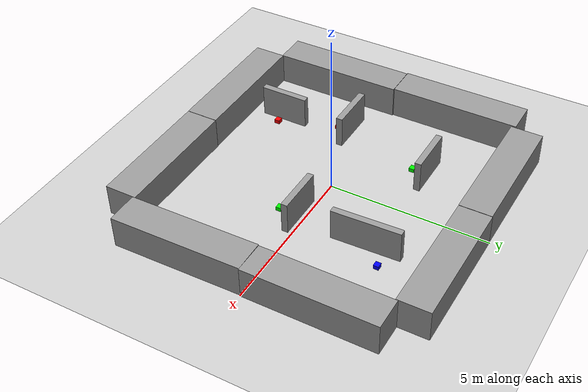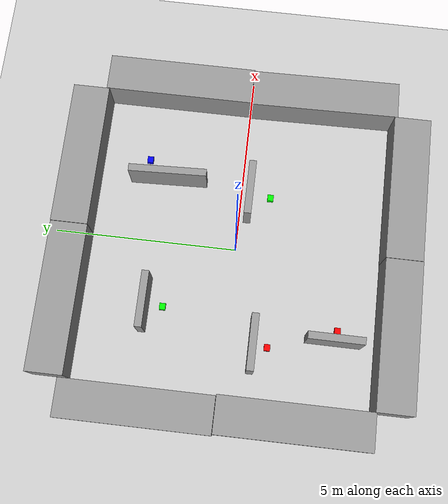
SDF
<sdf version="1.7">
 <world name="default">
  <light name="sun" type="directional">
   <cast_shadows>0</cast_shadows>
   <pose>0 0 10 0 -0 0</pose>
   <diffuse>0.8 0.8 0.8 1</diffuse>
   <specular>0.2 0.2 0.2 1</specular>
   <attenuation>
    <range>1000</range>
    <constant>0.9</constant>
    <linear>0.01</linear>
    <quadratic>0.001</quadratic>
   </attenuation>
   <direction>-0.5 0.1 -0.9</direction>
   <spot><inner_angle>0</inner_angle><outer_angle>0</outer_angle><falloff>0</falloff></spot>
  </light>
  <model name="ground_plane">
   <static>1</static>
   <link name="link">
    <collision name="collision">
     <geometry><plane><normal>0 0 1</normal><size>100 100</size></plane></geometry>
     <surface><friction><ode><mu>100</mu><mu2>50</mu2></ode></friction></surface>
    </collision>
    <visual name="visual">
     <cast_shadows>0</cast_shadows>
     <geometry><plane><normal>0 0 1</normal><size>100 100</size></plane></geometry>
     <material>
      <script><uri>file://media/materials/scripts/gazebo.material</uri><name>Gazebo/Grey</name></script>
     </material>
    </visual>
   </link>
  </model>
  <gravity>0 0 -9.8</gravity>
  <scene><ambient>0.4 0.4 0.4 1</ambient><background>0.7 0.7 0.7 1</background><shadows>1</shadows></scene>
  <magnetic_field>6e-06 2.3e-05 -4.2e-05</magnetic_field>
  <atmosphere type="adiabatic"/>
  <physics type="ode">
   <max_step_size>0.001</max_step_size>
   <real_time_factor>1</real_time_factor>
   <real_time_update_rate>1000</real_time_update_rate>
  </physics>
  <audio><device>default</device></audio>
  <spherical_coordinates>
   <surface_model>EARTH_WGS84</surface_model>
   <latitude_deg>0</latitude_deg>
   <longitude_deg>0</longitude_deg>
   <elevation>0</elevation>
   <heading_deg>0</heading_deg>
  </spherical_coordinates>
  <model name="unit_box">
   <pose>4.50391 -2.02999 0.499997 0 -5e-06 0.01606</pose>
   <link name="link">
    <inertial>
     <mass>1</mass>
     <inertia>
      <ixx>0.166667</ixx>
      <ixy>0</ixy>
      <ixz>0</ixz>
      <iyy>0.166667</iyy>
      <iyz>0</iyz>
      <izz>0.166667</izz>
     </inertia>
    </inertial>
    <collision name="collision"><geometry><box><size>1 4.0622 1</size></box></geometry></collision>
    <visual name="visual">
     <geometry><box><size>1 4.0622 1</size></box></geometry>
     <material>
      <script><name>Gazebo/Grey</name><uri>file://media/materials/scripts/gazebo.material</uri></script>
     </material>
    </visual>
   </link>
  </model>
  <model name="unit_box_clone">
   <pose>4.5001 2.0405 0.499196 -0.000396 -0 1.7e-05</pose>
   <link name="link">
    <inertial>
     <mass>1</mass>
     <inertia>
      <ixx>0.166667</ixx>
      <ixy>0</ixy>
      <ixz>0</ixz>
      <iyy>0.166667</iyy>
      <iyz>0</iyz>
      <izz>0.166667</izz>
     </inertia>
    </inertial>
    <collision name="collision"><geometry><box><size>1 4.0622 1</size></box></geometry></collision>
    <visual name="visual">
     <geometry><box><size>1 4.0622 1</size></box></geometry>
     <material>
      <script><name>Gazebo/Grey</name><uri>file://media/materials/scripts/gazebo.material</uri></script>
     </material>
    </visual>
   </link>
  </model>
  <model name="unit_box_0">
   <pose>2.00812 4.49153 0.499283 -0 -0.000362 3.4e-05</pose>
   <link name="link">
    <inertial>
     <mass>1</mass>
     <inertia>
      <ixx>0.166667</ixx>
      <ixy>0</ixy>
      <ixz>0</ixz>
      <iyy>0.166667</iyy>
      <iyz>0</iyz>
      <izz>0.166667</izz>
     </inertia>
    </inertial>
    <collision name="collision"><geometry><box><size>3.96686 1 1</size></box></geometry></collision>
    <visual name="visual">
     <geometry><box><size>3.96686 1 1</size></box></geometry>
     <material>
      <script><name>Gazebo/Grey</name><uri>file://media/materials/scripts/gazebo.material</uri></script>
     </material>
    </visual>
   </link>
  </model>
  <model name="unit_box_0_clone">
   <pose>-1.99225 4.48227 0.499239 0 -0.000379 1e-05</pose>
   <link name="link">
    <inertial>
     <mass>1</mass>
     <inertia>
      <ixx>0.166667</ixx>
      <ixy>0</ixy>
      <ixz>0</ixz>
      <iyy>0.166667</iyy>
      <iyz>0</iyz>
      <izz>0.166667</izz>
     </inertia>
    </inertial>
    <collision name="collision"><geometry><box><size>4.01582 1 1</size></box></geometry></collision>
    <visual name="visual">
     <geometry><box><size>4.01582 1 1</size></box></geometry>
     <material>
      <script><name>Gazebo/Grey</name><uri>file://media/materials/scripts/gazebo.material</uri></script>
     </material>
    </visual>
   </link>
  </model>
  <model name="unit_box_0_clone_clone">
   <pose>2.02589 -4.48877 0.499239 0 -0.000379 -0.000305</pose>
   <link name="link">
    <inertial>
     <mass>1</mass>
     <inertia>
      <ixx>0.166667</ixx>
      <ixy>0</ixy>
      <ixz>0</ixz>
      <iyy>0.166667</iyy>
      <iyz>0</iyz>
      <izz>0.166667</izz>
     </inertia>
    </inertial>
    <collision name="collision"><geometry><box><size>4.01582 1 1</size></box></geometry></collision>
    <visual name="visual">
     <geometry><box><size>4.01582 1 1</size></box></geometry>
     <material>
      <script><name>Gazebo/Grey</name><uri>file://media/materials/scripts/gazebo.material</uri></script>
     </material>
    </visual>
   </link>
  </model>
  <model name="unit_box_clone_0">
   <pose>-4.50839 -1.98951 0.499196 0.000396 -0 0.001731</pose>
   <link name="link">
    <inertial>
     <mass>1</mass>
     <inertia>
      <ixx>0.166667</ixx>
      <ixy>0</ixy>
      <ixz>0</ixz>
      <iyy>0.166667</iyy>
      <iyz>0</iyz>
      <izz>0.166667</izz>
     </inertia>
    </inertial>
    <collision name="collision"><geometry><box><size>1 4.0622 1</size></box></geometry></collision>
    <visual name="visual">
     <geometry><box><size>1 4.0622 1</size></box></geometry>
     <material>
      <script><name>Gazebo/Grey</name><uri>file://media/materials/scripts/gazebo.material</uri></script>
     </material>
    </visual>
   </link>
  </model>
  <model name="unit_box_clone_1">
   <pose>-4.54977 2.08165 0.499196 -0.000396 -0 0.000307</pose>
   <link name="link">
    <inertial>
     <mass>1</mass>
     <inertia>
      <ixx>0.166667</ixx>
      <ixy>0</ixy>
      <ixz>0</ixz>
      <iyy>0.166667</iyy>
      <iyz>0</iyz>
      <izz>0.166667</izz>
     </inertia>
    </inertial>
    <collision name="collision"><geometry><box><size>1 4.0622 1</size></box></geometry></collision>
    <visual name="visual">
     <geometry><box><size>1 4.0622 1</size></box></geometry>
     <material>
      <script><name>Gazebo/Grey</name><uri>file://media/materials/scripts/gazebo.material</uri></script>
     </material>
    </visual>
   </link>
  </model>
  <model name="unit_box_0_clone_clone_clone">
   <pose>-1.99638 -4.49442 0.499998 -5e-06 -0 2.9e-05</pose>
   <link name="link">
    <inertial>
     <mass>1</mass>
     <inertia>
      <ixx>0.166667</ixx>
      <ixy>0</ixy>
      <ixz>0</ixz>
      <iyy>0.166667</iyy>
      <iyz>0</iyz>
      <izz>0.166667</izz>
     </inertia>
    </inertial>
    <collision name="collision"><geometry><box><size>4.01582 1 1</size></box></geometry></collision>
    <visual name="visual">
     <geometry><box><size>4.01582 1 1</size></box></geometry>
     <material>
      <script><name>Gazebo/Grey</name><uri>file://media/materials/scripts/gazebo.material</uri></script>
     </material>
    </visual>
   </link>
  </model>
  <model name="unit_box_1_clone_1_clone_clone_1">
   <link name="link">
    <inertial>
     <mass>1</mass>
     <inertia>
      <ixx>0.166667</ixx>
      <ixy>0</ixy>
      <ixz>0</ixz>
      <iyy>0.166667</iyy>
      <iyz>0</iyz>
      <izz>0.166667</izz>
     </inertia>
    </inertial>
    <visual name="visual">
     <geometry><box><size>0.177426 0.164052 0.124949</size></box></geometry>
     <material>
      <script><name>Gazebo/Grey</name><uri>file://media/materials/scripts/gazebo.material</uri></script>
      <shader type="pixel"><normal_map>__default__</normal_map></shader>
      <ambient>0 0 1 1</ambient>
      <diffuse>0 0 1 1</diffuse>
      <specular>0 0 1 1</specular>
      <emissive>0 0 1 1</emissive>
      <lighting>1</lighting>
     </material>
    </visual>
    <collision name="collision">
     <geometry><box><size>0.177426 0.164052 0.124949</size></box></geometry>
     <surface>
      <friction>
       <ode><mu>1</mu><mu2>1</mu2><fdir1>0 0 0</fdir1><slip1>0</slip1><slip2>0</slip2></ode>
       <torsional>
        <coefficient>1</coefficient>
        <patch_radius>0</patch_radius>
        <surface_radius>0</surface_radius>
        <use_patch_radius>1</use_patch_radius>
        <ode><slip>0</slip></ode>
       </torsional>
      </friction>
      <bounce><restitution_coefficient>0</restitution_coefficient><threshold>1e+06</threshold></bounce>
      <contact>
       <collide_without_contact>0</collide_without_contact>
       <collide_without_contact_bitmask>1</collide_without_contact_bitmask>
       <collide_bitmask>1</collide_bitmask>
       <ode>
        <soft_cfm>0</soft_cfm>
        <soft_erp>0.2</soft_erp>
        <kp>1e+13</kp>
        <kd>1</kd>
        <max_vel>0.01</max_vel>
        <min_depth>0</min_depth>
       </ode>
       <bullet>
        <split_impulse>1</split_impulse>
        <split_impulse_penetration_threshold>-0.01</split_impulse_penetration_threshold>
        <soft_cfm>0</soft_cfm>
        <soft_erp>0.2</soft_erp>
        <kp>1e+13</kp>
        <kd>1</kd>
       </bullet>
      </contact>
     </surface>
    </collision>
   </link>
   <static>0</static>
   <pose>2.33872 2.68409 0.062474 4e-06 -2e-06 -8e-06</pose>
  </model>
  <model name="unit_box_1_clone_1_clone">
   <link name="link">
    <inertial>
     <mass>1</mass>
     <inertia>
      <ixx>0.166667</ixx>
      <ixy>0</ixy>
      <ixz>0</ixz>
      <iyy>0.166667</iyy>
      <iyz>0</iyz>
      <izz>0.166667</izz>
     </inertia>
    </inertial>
    <visual name="visual">
     <geometry><box><size>0.177426 0.164052 0.124949</size></box></geometry>
     <material>
      <script><name>Gazebo/Grey</name><uri>file://media/materials/scripts/gazebo.material</uri></script>
      <shader type="pixel"><normal_map>__default__</normal_map></shader>
      <ambient>1 0 0 1</ambient>
      <diffuse>1 0 0 1</diffuse>
      <specular>1 0 0 1</specular>
      <emissive>1 0 0 1</emissive>
      <lighting>1</lighting>
     </material>
    </visual>
    <collision name="collision">
     <geometry><box><size>0.177426 0.164052 0.124949</size></box></geometry>
     <surface>
      <friction>
       <ode><mu>1</mu><mu2>1</mu2><fdir1>0 0 0</fdir1><slip1>0</slip1><slip2>0</slip2></ode>
       <torsional>
        <coefficient>1</coefficient>
        <patch_radius>0</patch_radius>
        <surface_radius>0</surface_radius>
        <use_patch_radius>1</use_patch_radius>
        <ode><slip>0</slip></ode>
       </torsional>
      </friction>
      <bounce><restitution_coefficient>0</restitution_coefficient><threshold>1e+06</threshold></bounce>
      <contact>
       <collide_without_contact>0</collide_without_contact>
       <collide_without_contact_bitmask>1</collide_without_contact_bitmask>
       <collide_bitmask>1</collide_bitmask>
       <ode>
        <soft_cfm>0</soft_cfm>
        <soft_erp>0.2</soft_erp>
        <kp>1e+13</kp>
        <kd>1</kd>
        <max_vel>0.01</max_vel>
        <min_depth>0</min_depth>
       </ode>
       <bullet>
        <split_impulse>1</split_impulse>
        <split_impulse_penetration_threshold>-0.01</split_impulse_penetration_threshold>
        <soft_cfm>0</soft_cfm>
        <soft_erp>0.2</soft_erp>
        <kp>1e+13</kp>
        <kd>1</kd>
       </bullet>
      </contact>
     </surface>
    </collision>
   </link>
   <static>0</static>
   <pose>-1.9458 -2.98574 0.062474 4e-06 -2e-06 -8e-06</pose>
  </model>
  <model name="unit_box_1_clone_1_clone_clone_3">
   <link name="link">
    <inertial>
     <mass>1</mass>
     <inertia>
      <ixx>0.166667</ixx>
      <ixy>0</ixy>
      <ixz>0</ixz>
      <iyy>0.166667</iyy>
      <iyz>0</iyz>
      <izz>0.166667</izz>
     </inertia>
    </inertial>
    <visual name="visual">
     <geometry><box><size>0.177426 0.164052 0.124949</size></box></geometry>
     <material>
      <script><name>Gazebo/Grey</name><uri>file://media/materials/scripts/gazebo.material</uri></script>
      <shader type="pixel"><normal_map>__default__</normal_map></shader>
      <ambient>1 0 0 1</ambient>
      <diffuse>1 0 0 1</diffuse>
      <specular>1 0 0 1</specular>
      <emissive>1 0 0 1</emissive>
      <lighting>1</lighting>
     </material>
    </visual>
    <collision name="collision">
     <geometry><box><size>0.177426 0.164052 0.124949</size></box></geometry>
     <surface>
      <friction>
       <ode><mu>1</mu><mu2>1</mu2><fdir1>0 0 0</fdir1><slip1>0</slip1><slip2>0</slip2></ode>
       <torsional>
        <coefficient>1</coefficient>
        <patch_radius>0</patch_radius>
        <surface_radius>0</surface_radius>
        <use_patch_radius>1</use_patch_radius>
        <ode><slip>0</slip></ode>
       </torsional>
      </friction>
      <bounce><restitution_coefficient>0</restitution_coefficient><threshold>1e+06</threshold></bounce>
      <contact>
       <collide_without_contact>0</collide_without_contact>
       <collide_without_contact_bitmask>1</collide_without_contact_bitmask>
       <collide_bitmask>1</collide_bitmask>
       <ode>
        <soft_cfm>0</soft_cfm>
        <soft_erp>0.2</soft_erp>
        <kp>1e+13</kp>
        <kd>1</kd>
        <max_vel>0.01</max_vel>
        <min_depth>0</min_depth>
       </ode>
       <bullet>
        <split_impulse>1</split_impulse>
        <split_impulse_penetration_threshold>-0.01</split_impulse_penetration_threshold>
        <soft_cfm>0</soft_cfm>
        <soft_erp>0.2</soft_erp>
        <kp>1e+13</kp>
        <kd>1</kd>
       </bullet>
      </contact>
     </surface>
    </collision>
   </link>
   <static>0</static>
   <pose>-2.59871 -1.14635 0.062474 4e-06 -2e-06 -8e-06</pose>
  </model>
  <model name="unit_box_1_clone_1_clone_clone_2_clone">
   <link name="link">
    <inertial>
     <mass>1</mass>
     <inertia>
      <ixx>0.166667</ixx>
      <ixy>0</ixy>
      <ixz>0</ixz>
      <iyy>0.166667</iyy>
      <iyz>0</iyz>
      <izz>0.166667</izz>
     </inertia>
    </inertial>
    <visual name="visual">
     <geometry><box><size>0.177426 0.164052 0.124949</size></box></geometry>
     <material>
      <script><name>Gazebo/Grey</name><uri>file://media/materials/scripts/gazebo.material</uri></script>
      <shader type="pixel"><normal_map>__default__</normal_map></shader>
      <ambient>0 1 0 1</ambient>
      <diffuse>0 1 0 1</diffuse>
      <specular>0 1 0 1</specular>
      <emissive>0 1 0 1</emissive>
      <lighting>1</lighting>
     </material>
    </visual>
    <collision name="collision">
     <geometry><box><size>0.177426 0.164052 0.124949</size></box></geometry>
     <surface>
      <friction>
       <ode><mu>1</mu><mu2>1</mu2><fdir1>0 0 0</fdir1><slip1>0</slip1><slip2>0</slip2></ode>
       <torsional>
        <coefficient>1</coefficient>
        <patch_radius>0</patch_radius>
        <surface_radius>0</surface_radius>
        <use_patch_radius>1</use_patch_radius>
        <ode><slip>0</slip></ode>
       </torsional>
      </friction>
      <bounce><restitution_coefficient>0</restitution_coefficient><threshold>1e+06</threshold></bounce>
      <contact>
       <collide_without_contact>0</collide_without_contact>
       <collide_without_contact_bitmask>1</collide_without_contact_bitmask>
       <collide_bitmask>1</collide_bitmask>
       <ode>
        <soft_cfm>0</soft_cfm>
        <soft_erp>0.2</soft_erp>
        <kp>1e+13</kp>
        <kd>1</kd>
        <max_vel>0.01</max_vel>
        <min_depth>0</min_depth>
       </ode>
       <bullet>
        <split_impulse>1</split_impulse>
        <split_impulse_penetration_threshold>-0.01</split_impulse_penetration_threshold>
        <soft_cfm>0</soft_cfm>
        <soft_erp>0.2</soft_erp>
        <kp>1e+13</kp>
        <kd>1</kd>
       </bullet>
      </contact>
     </surface>
    </collision>
   </link>
   <static>0</static>
   <pose>1.58755 -0.821387 0.062474 4e-06 -2e-06 -8e-06</pose>
  </model>
  <model name="unit_box_1_clone_1_clone_clone_2">
   <link name="link">
    <inertial>
     <mass>1</mass>
     <inertia>
      <ixx>0.166667</ixx>
      <ixy>0</ixy>
      <ixz>0</ixz>
      <iyy>0.166667</iyy>
      <iyz>0</iyz>
      <izz>0.166667</izz>
     </inertia>
    </inertial>
    <visual name="visual">
     <geometry><box><size>0.177426 0.164052 0.124949</size></box></geometry>
     <material>
      <script><name>Gazebo/Grey</name><uri>file://media/materials/scripts/gazebo.material</uri></script>
      <shader type="pixel"><normal_map>__default__</normal_map></shader>
      <ambient>0 0 1 1</ambient>
      <diffuse>0 1 0 1</diffuse>
      <specular>0 1 0 1</specular>
      <emissive>0 1 0 1</emissive>
      <lighting>1</lighting>
     </material>
    </visual>
    <collision name="collision">
     <geometry><box><size>0.177426 0.164052 0.124949</size></box></geometry>
     <surface>
      <friction>
       <ode><mu>1</mu><mu2>1</mu2><fdir1>0 0 0</fdir1><slip1>0</slip1><slip2>0</slip2></ode>
       <torsional>
        <coefficient>1</coefficient>
        <patch_radius>0</patch_radius>
        <surface_radius>0</surface_radius>
        <use_patch_radius>1</use_patch_radius>
        <ode><slip>0</slip></ode>
       </torsional>
      </friction>
      <bounce><restitution_coefficient>0</restitution_coefficient><threshold>1e+06</threshold></bounce>
      <contact>
       <collide_without_contact>0</collide_without_contact>
       <collide_without_contact_bitmask>1</collide_without_contact_bitmask>
       <collide_bitmask>1</collide_bitmask>
       <ode>
        <soft_cfm>0</soft_cfm>
        <soft_erp>0.2</soft_erp>
        <kp>1e+13</kp>
        <kd>1</kd>
        <max_vel>0.01</max_vel>
        <min_depth>0</min_depth>
       </ode>
       <bullet>
        <split_impulse>1</split_impulse>
        <split_impulse_penetration_threshold>-0.01</split_impulse_penetration_threshold>
        <soft_cfm>0</soft_cfm>
        <soft_erp>0.2</soft_erp>
        <kp>1e+13</kp>
        <kd>1</kd>
       </bullet>
      </contact>
     </surface>
    </collision>
   </link>
   <static>0</static>
   <pose>-1.81227 1.7855 0.062474 -5e-06 1e-06 -7e-06</pose>
  </model>
  <model name="unit_box_1">
   <link name="link">
    <inertial>
     <mass>1</mass>
     <inertia>
      <ixx>0.166667</ixx>
      <ixy>0</ixy>
      <ixz>0</ixz>
      <iyy>0.166667</iyy>
      <iyz>0</iyz>
      <izz>0.166667</izz>
     </inertia>
    </inertial>
    <visual name="visual">
     <geometry><box><size>1.50144 0.197957 1</size></box></geometry>
     <material>
      <script><name>Gazebo/Grey</name><uri>file://media/materials/scripts/gazebo.material</uri></script>
      <shader type="pixel"/>
     </material>
    </visual>
    <collision name="collision">
     <geometry><box><size>1.50144 0.197957 1</size></box></geometry>
     <surface>
      <friction>
       <ode><mu>1</mu><mu2>1</mu2><fdir1>0 0 0</fdir1><slip1>0</slip1><slip2>0</slip2></ode>
       <torsional>
        <coefficient>1</coefficient>
        <patch_radius>0</patch_radius>
        <surface_radius>0</surface_radius>
        <use_patch_radius>1</use_patch_radius>
        <ode><slip>0</slip></ode>
       </torsional>
      </friction>
      <bounce><restitution_coefficient>0</restitution_coefficient><threshold>1e+06</threshold></bounce>
      <contact>
       <collide_without_contact>0</collide_without_contact>
       <collide_without_contact_bitmask>1</collide_without_contact_bitmask>
       <collide_bitmask>1</collide_bitmask>
       <ode>
        <soft_cfm>0</soft_cfm>
        <soft_erp>0.2</soft_erp>
        <kp>1e+13</kp>
        <kd>1</kd>
        <max_vel>0.01</max_vel>
        <min_depth>0</min_depth>
       </ode>
       <bullet>
        <split_impulse>1</split_impulse>
        <split_impulse_penetration_threshold>-0.01</split_impulse_penetration_threshold>
        <soft_cfm>0</soft_cfm>
        <soft_erp>0.2</soft_erp>
        <kp>1e+13</kp>
        <kd>1</kd>
       </bullet>
      </contact>
     </surface>
    </collision>
   </link>
   <static>0</static>
   <pose>1.56862 -0.224108 0.5 0 -0 0</pose>
  </model>
  <model name="unit_box_1_clone">
   <link name="link">
    <inertial>
     <mass>1</mass>
     <inertia>
      <ixx>0.166667</ixx>
      <ixy>0</ixy>
      <ixz>0</ixz>
      <iyy>0.166667</iyy>
      <iyz>0</iyz>
      <izz>0.166667</izz>
     </inertia>
    </inertial>
    <visual name="visual">
     <geometry><box><size>2.13517 0.197957 1</size></box></geometry>
     <material>
      <script><name>Gazebo/Grey</name><uri>file://media/materials/scripts/gazebo.material</uri></script>
      <shader type="pixel"/>
     </material>
    </visual>
    <collision name="collision">
     <geometry><box><size>2.13517 0.197957 1</size></box></geometry>
     <surface>
      <friction>
       <ode><mu>1</mu><mu2>1</mu2><fdir1>0 0 0</fdir1><slip1>0</slip1><slip2>0</slip2></ode>
       <torsional>
        <coefficient>1</coefficient>
        <patch_radius>0</patch_radius>
        <surface_radius>0</surface_radius>
        <use_patch_radius>1</use_patch_radius>
        <ode><slip>0</slip></ode>
       </torsional>
      </friction>
      <bounce><restitution_coefficient>0</restitution_coefficient><threshold>1e+06</threshold></bounce>
      <contact>
       <collide_without_contact>0</collide_without_contact>
       <collide_without_contact_bitmask>1</collide_without_contact_bitmask>
       <collide_bitmask>1</collide_bitmask>
       <ode>
        <soft_cfm>0</soft_cfm>
        <soft_erp>0.2</soft_erp>
        <kp>1e+13</kp>
        <kd>1</kd>
        <max_vel>0.01</max_vel>
        <min_depth>0</min_depth>
       </ode>
       <bullet>
        <split_impulse>1</split_impulse>
        <split_impulse_penetration_threshold>-0.01</split_impulse_penetration_threshold>
        <soft_cfm>0</soft_cfm>
        <soft_erp>0.2</soft_erp>
        <kp>1e+13</kp>
        <kd>1</kd>
       </bullet>
      </contact>
     </surface>
    </collision>
   </link>
   <static>0</static>
   <pose>1.78455 2.06793 0.5 0 0 -1.53439</pose>
  </model>
  <model name="unit_box_1_clone_0">
   <link name="link">
    <inertial>
     <mass>1</mass>
     <inertia>
      <ixx>0.166667</ixx>
      <ixy>0</ixy>
      <ixz>0</ixz>
      <iyy>0.166667</iyy>
      <iyz>0</iyz>
      <izz>0.166667</izz>
     </inertia>
    </inertial>
    <visual name="visual">
     <geometry><box><size>1.50144 0.197957 1</size></box></geometry>
     <material>
      <script><name>Gazebo/Grey</name><uri>file://media/materials/scripts/gazebo.material</uri></script>
      <shader type="pixel"/>
     </material>
    </visual>
    <collision name="collision">
     <geometry><box><size>1.50144 0.197957 1</size></box></geometry>
     <surface>
      <friction>
       <ode><mu>1</mu><mu2>1</mu2><fdir1>0 0 0</fdir1><slip1>0</slip1><slip2>0</slip2></ode>
       <torsional>
        <coefficient>1</coefficient>
        <patch_radius>0</patch_radius>
        <surface_radius>0</surface_radius>
        <use_patch_radius>1</use_patch_radius>
        <ode><slip>0</slip></ode>
       </torsional>
      </friction>
      <bounce><restitution_coefficient>0</restitution_coefficient><threshold>1e+06</threshold></bounce>
      <contact>
       <collide_without_contact>0</collide_without_contact>
       <collide_without_contact_bitmask>1</collide_without_contact_bitmask>
       <collide_bitmask>1</collide_bitmask>
       <ode>
        <soft_cfm>0</soft_cfm>
        <soft_erp>0.2</soft_erp>
        <kp>1e+13</kp>
        <kd>1</kd>
        <max_vel>0.01</max_vel>
        <min_depth>0</min_depth>
       </ode>
       <bullet>
        <split_impulse>1</split_impulse>
        <split_impulse_penetration_threshold>-0.01</split_impulse_penetration_threshold>
        <soft_cfm>0</soft_cfm>
        <soft_erp>0.2</soft_erp>
        <kp>1e+13</kp>
        <kd>1</kd>
       </bullet>
      </contact>
     </surface>
    </collision>
   </link>
   <static>0</static>
   <pose>-1.79993 2.26497 0.5 0 -0 0</pose>
  </model>
  <model name="unit_box_1_clone_1">
   <link name="link">
    <inertial>
     <mass>1</mass>
     <inertia>
      <ixx>0.166667</ixx>
      <ixy>0</ixy>
      <ixz>0</ixz>
      <iyy>0.166667</iyy>
      <iyz>0</iyz>
      <izz>0.166667</izz>
     </inertia>
    </inertial>
    <visual name="visual">
     <geometry><box><size>1.50144 0.197957 1</size></box></geometry>
     <material>
      <script><name>Gazebo/Grey</name><uri>file://media/materials/scripts/gazebo.material</uri></script>
      <shader type="pixel"/>
     </material>
    </visual>
    <collision name="collision">
     <geometry><box><size>1.50144 0.197957 1</size></box></geometry>
     <surface>
      <friction>
       <ode><mu>1</mu><mu2>1</mu2><fdir1>0 0 0</fdir1><slip1>0</slip1><slip2>0</slip2></ode>
       <torsional>
        <coefficient>1</coefficient>
        <patch_radius>0</patch_radius>
        <surface_radius>0</surface_radius>
        <use_patch_radius>1</use_patch_radius>
        <ode><slip>0</slip></ode>
       </torsional>
      </friction>
      <bounce><restitution_coefficient>0</restitution_coefficient><threshold>1e+06</threshold></bounce>
      <contact>
       <collide_without_contact>0</collide_without_contact>
       <collide_without_contact_bitmask>1</collide_without_contact_bitmask>
       <collide_bitmask>1</collide_bitmask>
       <ode>
        <soft_cfm>0</soft_cfm>
        <soft_erp>0.2</soft_erp>
        <kp>1e+13</kp>
        <kd>1</kd>
        <max_vel>0.01</max_vel>
        <min_depth>0</min_depth>
       </ode>
       <bullet>
        <split_impulse>1</split_impulse>
        <split_impulse_penetration_threshold>-0.01</split_impulse_penetration_threshold>
        <soft_cfm>0</soft_cfm>
        <soft_erp>0.2</soft_erp>
        <kp>1e+13</kp>
        <kd>1</kd>
       </bullet>
      </contact>
     </surface>
    </collision>
   </link>
   <static>0</static>
   <pose>-2.24987 -2.87657 0.5 0 0 -1.57323</pose>
  </model>
  <model name="unit_box_1_clone_0_clone">
   <link name="link">
    <inertial>
     <mass>1</mass>
     <inertia>
      <ixx>0.166667</ixx>
      <ixy>0</ixy>
      <ixz>0</ixz>
      <iyy>0.166667</iyy>
      <iyz>0</iyz>
      <izz>0.166667</izz>
     </inertia>
    </inertial>
    <visual name="visual">
     <geometry><box><size>1.50144 0.197957 1</size></box></geometry>
     <material>
      <script><name>Gazebo/Grey</name><uri>file://media/materials/scripts/gazebo.material</uri></script>
      <shader type="pixel"/>
     </material>
    </visual>
    <collision name="collision">
     <geometry><box><size>1.50144 0.197957 1</size></box></geometry>
     <surface>
      <friction>
       <ode><mu>1</mu><mu2>1</mu2><fdir1>0 0 0</fdir1><slip1>0</slip1><slip2>0</slip2></ode>
       <torsional>
        <coefficient>1</coefficient>
        <patch_radius>0</patch_radius>
        <surface_radius>0</surface_radius>
        <use_patch_radius>1</use_patch_radius>
        <ode><slip>0</slip></ode>
       </torsional>
      </friction>
      <bounce><restitution_coefficient>0</restitution_coefficient><threshold>1e+06</threshold></bounce>
      <contact>
       <collide_without_contact>0</collide_without_contact>
       <collide_without_contact_bitmask>1</collide_without_contact_bitmask>
       <collide_bitmask>1</collide_bitmask>
       <ode>
        <soft_cfm>0</soft_cfm>
        <soft_erp>0.2</soft_erp>
        <kp>1e+13</kp>
        <kd>1</kd>
        <max_vel>0.01</max_vel>
        <min_depth>0</min_depth>
       </ode>
       <bullet>
        <split_impulse>1</split_impulse>
        <split_impulse_penetration_threshold>-0.01</split_impulse_penetration_threshold>
        <soft_cfm>0</soft_cfm>
        <soft_erp>0.2</soft_erp>
        <kp>1e+13</kp>
        <kd>1</kd>
       </bullet>
      </contact>
     </surface>
    </collision>
   </link>
   <static>0</static>
   <pose>-2.59017 -0.735208 0.5 0 -0 0</pose>
  </model>
 </world>
</sdf>
